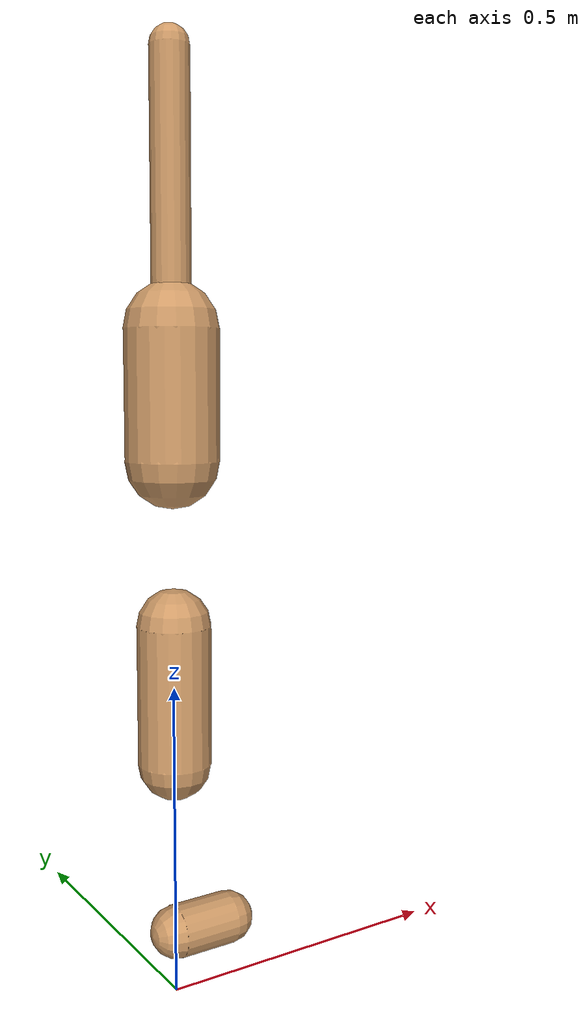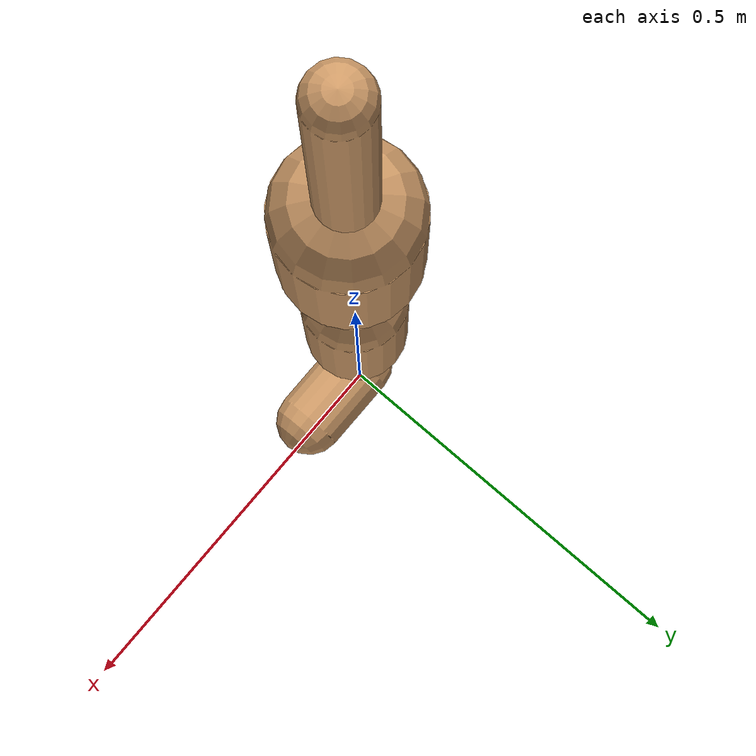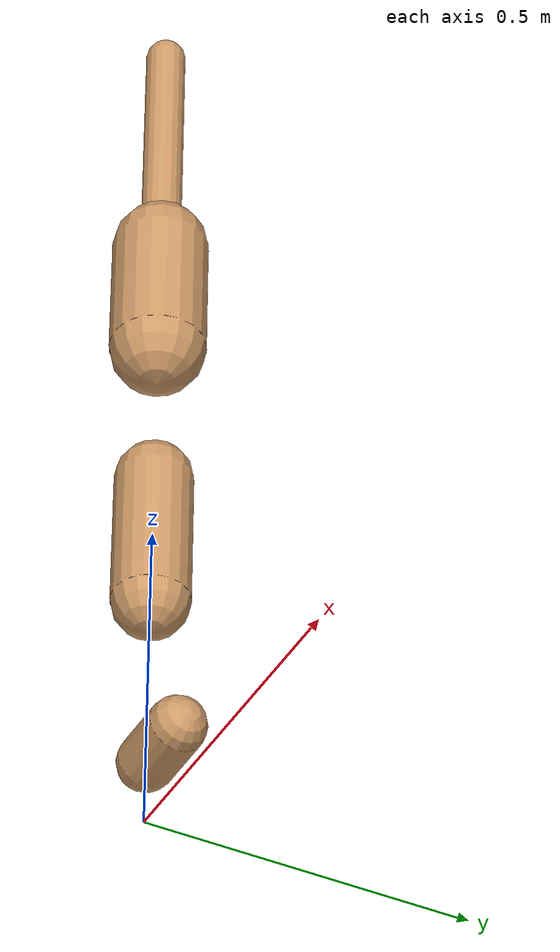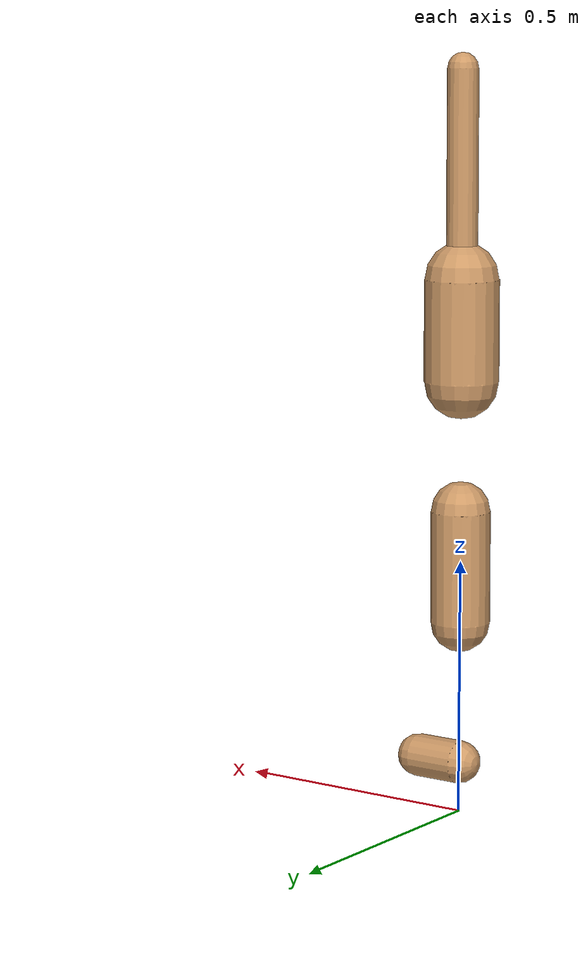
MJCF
<mujoco model="walker2d">
  <compiler angle="degree" coordinate="global" inertiafromgeom="true" />
  <default>
    <joint armature="0.01" damping=".1" limited="true" />
    <geom conaffinity="0" condim="3" contype="1" density="1000" friction="0.8 .1 .1" rgba="0.8 0.6 .4 1" />
  </default>
  <option integrator="RK4" timestep="0.002" />
  <worldbody>

    <body name="torso" pos="0 0 -0.5341211598822105">
      <joint armature="0" axis="1 0 0" damping="0" limited="false" name="ignorex" pos="0 0 0" stiffness="0" type="slide" />
      <joint armature="0" axis="0 0 1" damping="0" limited="false" name="ignorez" pos="0 0 0" ref="1.25" stiffness="0" type="slide" />
      <joint armature="0" axis="0 1 0" damping="0" limited="false" name="ignorey" pos="0 0 0" stiffness="0" type="hinge" />
      <geom fromto="0 0 1.45 0 0 1.05" name="torso_geom" size="0.030329084903502862" type="capsule" />
      <body name="thigh">
        <joint axis="0 -1 0" name="thigh_joint" pos="0 0 1.05" range="-150 0" type="hinge" />
        <geom fromto="0.0 0.0 1.05 0.0 0.0 0.853004759944205" name="thigh_geom" size="0.07233381699176485" type="capsule" />
        <body name="leg" pos="0.0 0.0 0.253004759944205">
          <joint axis="0 -1 0" name="leg_joint" pos="0 0 0.6" range="-150 0" type="hinge" />
          <geom fromto="0.0 0.0 0.6 0.0 0.0 0.3811163999380055" name="leg_geom" size="0.05786705359341188" type="capsule" />
          <body name="foot" pos="0.0 0.0 0.2811163999380055">
            <joint axis="0 -1 0" name="foot_joint" pos="0 0 0.1" range="-45 45" type="hinge" />
            <geom fromto="0.0 0.0 0.1 0.09495709787641407 0.0 0.1" name="foot_geom" size="0.04171017810299434" type="capsule" />
          </body>
        </body>
      </body>

      <body name="thigh_left">
        <joint axis="0 -1 0" name="thigh_left_joint" pos="0 0 1.05" range="-150 0" type="hinge" />
        <geom fromto="0.0 0.0 1.05 0.0 0.0 0.853004759944205" name="thigh_left_geom" rgba=".7 .3 .6 1" size="0.07233381699176485" type="capsule" />
        <body name="leg_left" pos="0.0 0.0 0.253004759944205">
          <joint axis="0 -1 0" name="leg_left_joint" pos="0 0 0.6" range="-150 0" type="hinge" />
          <geom fromto="0.0 0.0 0.6 0.0 0.0 0.3811163999380055" name="leg_left_geom" rgba=".7 .3 .6 1" size="0.05786705359341188" type="capsule" />
          <body name="foot_left" pos="0.0 0.0 0.2811163999380055">
            <joint axis="0 -1 0" name="foot_left_joint" pos="0 0 0.1" range="-45 45" type="hinge" />
            <geom fromto="0.0 0.0 0.1 0.09495709787641407 0.0 0.1" name="foot_left_geom" rgba=".7 .3 .6 1" size="0.04171017810299434" type="capsule" />
          </body>
        </body>
      </body>
    </body>
  </worldbody>
  <actuator>

    <motor ctrllimited="true" ctrlrange="-1.0 1.0" gear="100" joint="thigh_joint" />
    <motor ctrllimited="true" ctrlrange="-1.0 1.0" gear="100" joint="leg_joint" />
    <motor ctrllimited="true" ctrlrange="-1.0 1.0" gear="100" joint="foot_joint" />
    <motor ctrllimited="true" ctrlrange="-1.0 1.0" gear="100" joint="thigh_left_joint" />
    <motor ctrllimited="true" ctrlrange="-1.0 1.0" gear="100" joint="leg_left_joint" />
    <motor ctrllimited="true" ctrlrange="-1.0 1.0" gear="100" joint="foot_left_joint" />

  </actuator>
</mujoco>
